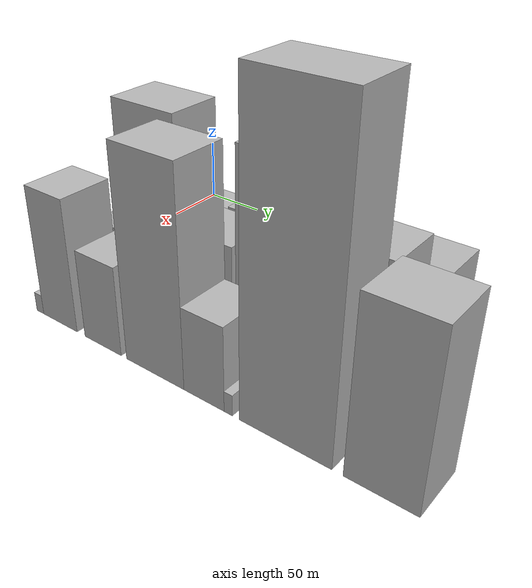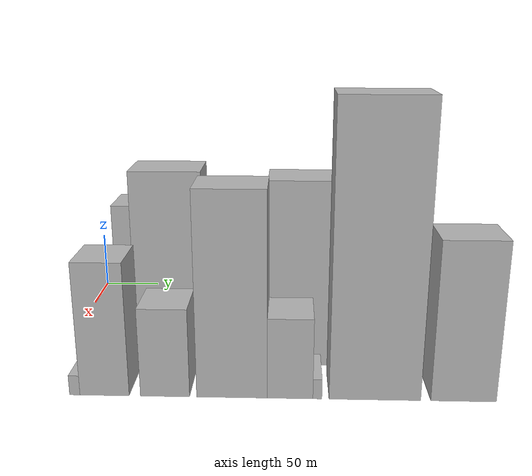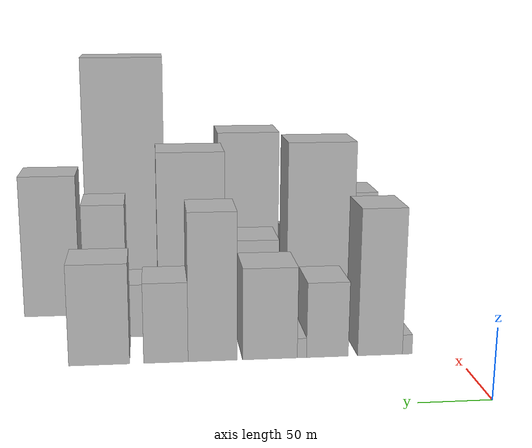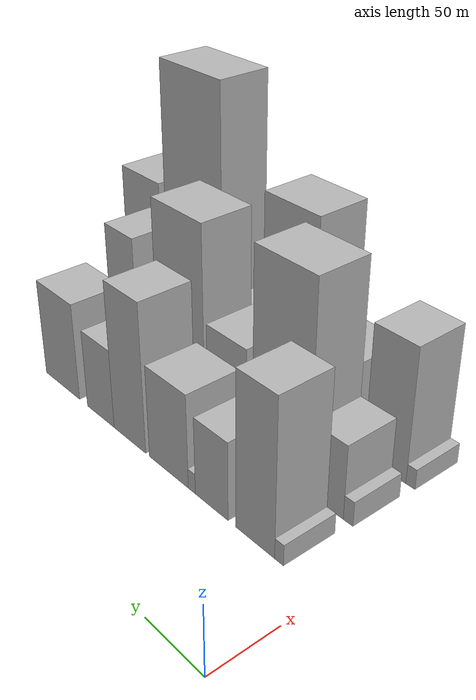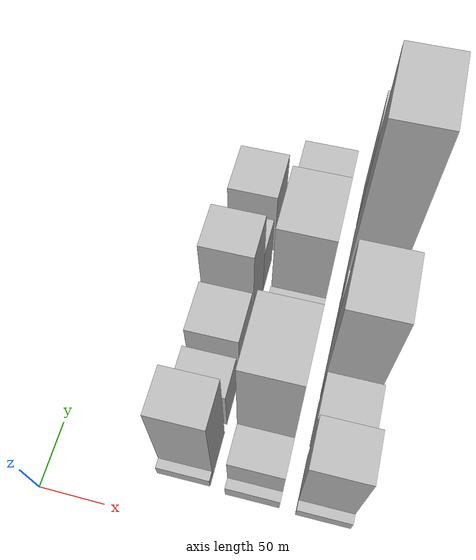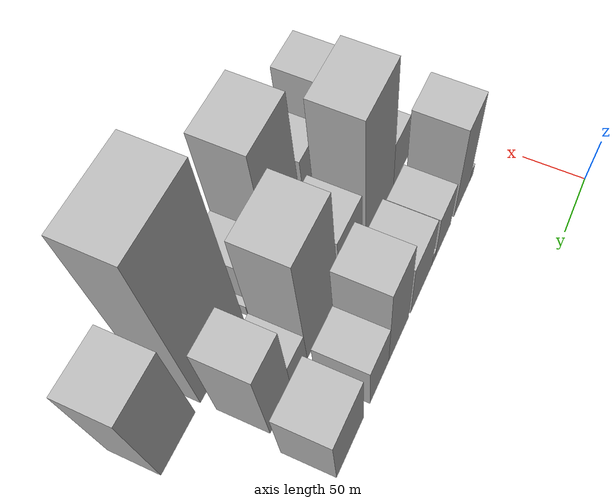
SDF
<sdf version="1.6">
 <world name="default">
  <model name="building_15">
   <static>1</static>
   <pose>100.0000 34.3430 0 0.000000 0.000000 0.000000</pose>
   <link name="link">
    <pose>0 0 7.50 0 0 0</pose>
    <collision name="collision"><geometry><box><size>40.0000 7.2717 15.0000</size></box></geometry></collision>
    <visual name="visual">
     <cast_shadows>0</cast_shadows>
     <geometry><box><size>40.0000 7.2717 15.0000</size></box></geometry>
     <material>
      <script>
       <uri>model://HANNAS_wall/materials/scripts</uri>
       <uri>model://HANNAS_wall/materials/textures</uri>
       <name>vrc/HANNAS_wall</name>
      </script>
     </material>
    </visual>
   </link>
  </model>
  <model name="building_16">
   <static>1</static>
   <pose>100.0000 54.7436 0 0.000000 0.000000 0.000000</pose>
   <link name="link">
    <pose>0 0 55.50 0 0 0</pose>
    <collision name="collision"><geometry><box><size>40.0000 33.5295 111.0000</size></box></geometry></collision>
    <visual name="visual">
     <cast_shadows>0</cast_shadows>
     <geometry><box><size>40.0000 33.5295 111.0000</size></box></geometry>
     <material>
      <script>
       <uri>model://HANNAS_wall/materials/scripts</uri>
       <uri>model://HANNAS_wall/materials/textures</uri>
       <name>vrc/HANNAS_wall</name>
      </script>
     </material>
    </visual>
   </link>
  </model>
  <model name="building_17">
   <static>1</static>
   <pose>100.0000 93.9533 0 0.000000 0.000000 0.000000</pose>
   <link name="link">
    <pose>0 0 28.50 0 0 0</pose>
    <collision name="collision"><geometry><box><size>40.0000 30.8900 57.0000</size></box></geometry></collision>
    <visual name="visual">
     <cast_shadows>0</cast_shadows>
     <geometry><box><size>40.0000 30.8900 57.0000</size></box></geometry>
     <material>
      <script>
       <uri>model://HANNAS_wall/materials/scripts</uri>
       <uri>model://HANNAS_wall/materials/textures</uri>
       <name>vrc/HANNAS_wall</name>
      </script>
     </material>
    </visual>
   </link>
  </model>
  <model name="building_18">
   <static>1</static>
   <pose>100.0000 112.8264 0 0.000000 0.000000 0.000000</pose>
   <link name="link">
    <pose>0 0 7.50 0 0 0</pose>
    <collision name="collision"><geometry><box><size>40.0000 6.8562 15.0000</size></box></geometry></collision>
    <visual name="visual">
     <cast_shadows>0</cast_shadows>
     <geometry><box><size>40.0000 6.8562 15.0000</size></box></geometry>
     <material>
      <script>
       <uri>model://HANNAS_wall/materials/scripts</uri>
       <uri>model://HANNAS_wall/materials/textures</uri>
       <name>vrc/HANNAS_wall</name>
      </script>
     </material>
    </visual>
   </link>
  </model>
  <model name="building_19">
   <static>1</static>
   <pose>100.0000 136.2971 0 0.000000 0.000000 0.000000</pose>
   <link name="link">
    <pose>0 0 34.50 0 0 0</pose>
    <collision name="collision"><geometry><box><size>40.0000 40.0853 69.0000</size></box></geometry></collision>
    <visual name="visual">
     <cast_shadows>0</cast_shadows>
     <geometry><box><size>40.0000 40.0853 69.0000</size></box></geometry>
     <material>
      <script>
       <uri>model://HANNAS_wall/materials/scripts</uri>
       <uri>model://HANNAS_wall/materials/textures</uri>
       <name>vrc/HANNAS_wall</name>
      </script>
     </material>
    </visual>
   </link>
  </model>
  <model name="building_20">
   <static>1</static>
   <pose>100.0000 178.0922 0 0.000000 0.000000 0.000000</pose>
   <link name="link">
    <pose>0 0 55.50 0 0 0</pose>
    <collision name="collision"><geometry><box><size>40.0000 35.5049 111.0000</size></box></geometry></collision>
    <visual name="visual">
     <cast_shadows>0</cast_shadows>
     <geometry><box><size>40.0000 35.5049 111.0000</size></box></geometry>
     <material>
      <script>
       <uri>model://HANNAS_wall/materials/scripts</uri>
       <uri>model://HANNAS_wall/materials/textures</uri>
       <name>vrc/HANNAS_wall</name>
      </script>
     </material>
    </visual>
   </link>
  </model>
  <model name="building_21">
   <static>1</static>
   <pose>100.0000 211.8071 0 0.000000 0.000000 0.000000</pose>
   <link name="link">
    <pose>0 0 30.00 0 0 0</pose>
    <collision name="collision"><geometry><box><size>40.0000 31.9250 60.0000</size></box></geometry></collision>
    <visual name="visual">
     <cast_shadows>0</cast_shadows>
     <geometry><box><size>40.0000 31.9250 60.0000</size></box></geometry>
     <material>
      <script>
       <uri>model://HANNAS_wall/materials/scripts</uri>
       <uri>model://HANNAS_wall/materials/textures</uri>
       <name>vrc/HANNAS_wall</name>
      </script>
     </material>
    </visual>
   </link>
  </model>
  <model name="building_22">
   <static>1</static>
   <pose>100.0000 259.4445 0 0.000000 0.000000 0.000000</pose>
   <link name="link">
    <pose>0 0 37.50 0 0 0</pose>
    <collision name="collision"><geometry><box><size>40.0000 43.3497 75.0000</size></box></geometry></collision>
    <visual name="visual">
     <cast_shadows>0</cast_shadows>
     <geometry><box><size>40.0000 43.3497 75.0000</size></box></geometry>
     <material>
      <script>
       <uri>model://HANNAS_wall/materials/scripts</uri>
       <uri>model://HANNAS_wall/materials/textures</uri>
       <name>vrc/HANNAS_wall</name>
      </script>
     </material>
    </visual>
   </link>
  </model>
  <model name="building_49">
   <static>1</static>
   <pose>152.0000 31.8512 0 0.000000 0.000000 0.000000</pose>
   <link name="link">
    <pose>0 0 9.00 0 0 0</pose>
    <collision name="collision"><geometry><box><size>40.0000 7.8231 18.0000</size></box></geometry></collision>
    <visual name="visual">
     <cast_shadows>0</cast_shadows>
     <geometry><box><size>40.0000 7.8231 18.0000</size></box></geometry>
     <material>
      <script>
       <uri>model://HANNAS_wall/materials/scripts</uri>
       <uri>model://HANNAS_wall/materials/textures</uri>
       <name>vrc/HANNAS_wall</name>
      </script>
     </material>
    </visual>
   </link>
  </model>
  <model name="building_50">
   <static>1</static>
   <pose>152.0000 50.0899 0 0.000000 0.000000 0.000000</pose>
   <link name="link">
    <pose>0 0 27.00 0 0 0</pose>
    <collision name="collision"><geometry><box><size>40.0000 28.6542 54.0000</size></box></geometry></collision>
    <visual name="visual">
     <cast_shadows>0</cast_shadows>
     <geometry><box><size>40.0000 28.6542 54.0000</size></box></geometry>
     <material>
      <script>
       <uri>model://HANNAS_wall/materials/scripts</uri>
       <uri>model://HANNAS_wall/materials/textures</uri>
       <name>vrc/HANNAS_wall</name>
      </script>
     </material>
    </visual>
   </link>
  </model>
  <model name="building_51">
   <static>1</static>
   <pose>152.0000 90.5990 0 0.000000 0.000000 0.000000</pose>
   <link name="link">
    <pose>0 0 75.00 0 0 0</pose>
    <collision name="collision"><geometry><box><size>40.0000 52.3640 150.0000</size></box></geometry></collision>
    <visual name="visual">
     <cast_shadows>0</cast_shadows>
     <geometry><box><size>40.0000 52.3640 150.0000</size></box></geometry>
     <material>
      <script>
       <uri>model://HANNAS_wall/materials/scripts</uri>
       <uri>model://HANNAS_wall/materials/textures</uri>
       <name>vrc/HANNAS_wall</name>
      </script>
     </material>
    </visual>
   </link>
  </model>
  <model name="building_52">
   <static>1</static>
   <pose>152.0000 119.8680 0 0.000000 0.000000 0.000000</pose>
   <link name="link">
    <pose>0 0 7.50 0 0 0</pose>
    <collision name="collision"><geometry><box><size>40.0000 6.1741 15.0000</size></box></geometry></collision>
    <visual name="visual">
     <cast_shadows>0</cast_shadows>
     <geometry><box><size>40.0000 6.1741 15.0000</size></box></geometry>
     <material>
      <script>
       <uri>model://HANNAS_wall/materials/scripts</uri>
       <uri>model://HANNAS_wall/materials/textures</uri>
       <name>vrc/HANNAS_wall</name>
      </script>
     </material>
    </visual>
   </link>
  </model>
  <model name="building_53">
   <static>1</static>
   <pose>152.0000 142.4640 0 0.000000 0.000000 0.000000</pose>
   <link name="link">
    <pose>0 0 37.50 0 0 0</pose>
    <collision name="collision"><geometry><box><size>40.0000 39.0178 75.0000</size></box></geometry></collision>
    <visual name="visual">
     <cast_shadows>0</cast_shadows>
     <geometry><box><size>40.0000 39.0178 75.0000</size></box></geometry>
     <material>
      <script>
       <uri>model://HANNAS_wall/materials/scripts</uri>
       <uri>model://HANNAS_wall/materials/textures</uri>
       <name>vrc/HANNAS_wall</name>
      </script>
     </material>
    </visual>
   </link>
  </model>
  <model name="building_54">
   <static>1</static>
   <pose>152.0000 190.5703 0 0.000000 0.000000 0.000000</pose>
   <link name="link">
    <pose>0 0 72.00 0 0 0</pose>
    <collision name="collision"><geometry><box><size>40.0000 51.1949 144.0000</size></box></geometry></collision>
    <visual name="visual">
     <cast_shadows>0</cast_shadows>
     <geometry><box><size>40.0000 51.1949 144.0000</size></box></geometry>
     <material>
      <script>
       <uri>model://HANNAS_wall/materials/scripts</uri>
       <uri>model://HANNAS_wall/materials/textures</uri>
       <name>vrc/HANNAS_wall</name>
      </script>
     </material>
    </visual>
   </link>
  </model>
  <model name="building_55">
   <static>1</static>
   <pose>152.0000 228.2397 0 0.000000 0.000000 0.000000</pose>
   <link name="link">
    <pose>0 0 21.00 0 0 0</pose>
    <collision name="collision"><geometry><box><size>40.0000 24.1439 42.0000</size></box></geometry></collision>
    <visual name="visual">
     <cast_shadows>0</cast_shadows>
     <geometry><box><size>40.0000 24.1439 42.0000</size></box></geometry>
     <material>
      <script>
       <uri>model://HANNAS_wall/materials/scripts</uri>
       <uri>model://HANNAS_wall/materials/textures</uri>
       <name>vrc/HANNAS_wall</name>
      </script>
     </material>
    </visual>
   </link>
  </model>
  <model name="building_56">
   <static>1</static>
   <pose>152.0000 256.5403 0 0.000000 0.000000 0.000000</pose>
   <link name="link">
    <pose>0 0 52.50 0 0 0</pose>
    <collision name="collision"><geometry><box><size>40.0000 32.4572 105.0000</size></box></geometry></collision>
    <visual name="visual">
     <cast_shadows>0</cast_shadows>
     <geometry><box><size>40.0000 32.4572 105.0000</size></box></geometry>
     <material>
      <script>
       <uri>model://HANNAS_wall/materials/scripts</uri>
       <uri>model://HANNAS_wall/materials/textures</uri>
       <name>vrc/HANNAS_wall</name>
      </script>
     </material>
    </visual>
   </link>
  </model>
  <model name="building_81">
   <static>1</static>
   <pose>204.0000 29.9520 0 0.000000 0.000000 0.000000</pose>
   <link name="link">
    <pose>0 0 7.50 0 0 0</pose>
    <collision name="collision"><geometry><box><size>40.0000 7.3735 15.0000</size></box></geometry></collision>
    <visual name="visual">
     <cast_shadows>0</cast_shadows>
     <geometry><box><size>40.0000 7.3735 15.0000</size></box></geometry>
     <material>
      <script>
       <uri>model://HANNAS_wall/materials/scripts</uri>
       <uri>model://HANNAS_wall/materials/textures</uri>
       <name>vrc/HANNAS_wall</name>
      </script>
     </material>
    </visual>
   </link>
  </model>
  <model name="building_82">
   <static>1</static>
   <pose>204.0000 51.1519 0 0.000000 0.000000 0.000000</pose>
   <link name="link">
    <pose>0 0 49.50 0 0 0</pose>
    <collision name="collision"><geometry><box><size>40.0000 35.0263 99.0000</size></box></geometry></collision>
    <visual name="visual">
     <cast_shadows>0</cast_shadows>
     <geometry><box><size>40.0000 35.0263 99.0000</size></box></geometry>
     <material>
      <script>
       <uri>model://HANNAS_wall/materials/scripts</uri>
       <uri>model://HANNAS_wall/materials/textures</uri>
       <name>vrc/HANNAS_wall</name>
      </script>
     </material>
    </visual>
   </link>
  </model>
  <model name="building_83">
   <static>1</static>
   <pose>204.0000 94.0574 0 0.000000 0.000000 0.000000</pose>
   <link name="link">
    <pose>0 0 33.00 0 0 0</pose>
    <collision name="collision"><geometry><box><size>40.0000 34.7847 66.0000</size></box></geometry></collision>
    <visual name="visual">
     <cast_shadows>0</cast_shadows>
     <geometry><box><size>40.0000 34.7847 66.0000</size></box></geometry>
     <material>
      <script>
       <uri>model://HANNAS_wall/materials/scripts</uri>
       <uri>model://HANNAS_wall/materials/textures</uri>
       <name>vrc/HANNAS_wall</name>
      </script>
     </material>
    </visual>
   </link>
  </model>
  <model name="building_84">
   <static>1</static>
   <pose>204.0000 141.3452 0 0.000000 0.000000 0.000000</pose>
   <link name="link">
    <pose>0 0 75.00 0 0 0</pose>
    <collision name="collision"><geometry><box><size>40.0000 49.7909 150.0000</size></box></geometry></collision>
    <visual name="visual">
     <cast_shadows>0</cast_shadows>
     <geometry><box><size>40.0000 49.7909 150.0000</size></box></geometry>
     <material>
      <script>
       <uri>model://HANNAS_wall/materials/scripts</uri>
       <uri>model://HANNAS_wall/materials/textures</uri>
       <name>vrc/HANNAS_wall</name>
      </script>
     </material>
    </visual>
   </link>
  </model>
  <model name="building_85">
   <static>1</static>
   <pose>204.0000 182.1629 0 0.000000 0.000000 0.000000</pose>
   <link name="link">
    <pose>0 0 30.00 0 0 0</pose>
    <collision name="collision"><geometry><box><size>40.0000 31.8446 60.0000</size></box></geometry></collision>
    <visual name="visual">
     <cast_shadows>0</cast_shadows>
     <geometry><box><size>40.0000 31.8446 60.0000</size></box></geometry>
     <material>
      <script>
       <uri>model://HANNAS_wall/materials/scripts</uri>
       <uri>model://HANNAS_wall/materials/textures</uri>
       <name>vrc/HANNAS_wall</name>
      </script>
     </material>
    </visual>
   </link>
  </model>
  <model name="building_86">
   <static>1</static>
   <pose>204.0000 201.2403 0 0.000000 0.000000 0.000000</pose>
   <link name="link">
    <pose>0 0 7.50 0 0 0</pose>
    <collision name="collision"><geometry><box><size>40.0000 6.3101 15.0000</size></box></geometry></collision>
    <visual name="visual">
     <cast_shadows>0</cast_shadows>
     <geometry><box><size>40.0000 6.3101 15.0000</size></box></geometry>
     <material>
      <script>
       <uri>model://HANNAS_wall/materials/scripts</uri>
       <uri>model://HANNAS_wall/materials/textures</uri>
       <name>vrc/HANNAS_wall</name>
      </script>
     </material>
    </visual>
   </link>
  </model>
  <model name="building_87">
   <static>1</static>
   <pose>204.0000 241.2767 0 0.000000 0.000000 0.000000</pose>
   <link name="link">
    <pose>0 0 105.00 0 0 0</pose>
    <collision name="collision"><geometry><box><size>40.0000 63.7628 210.0000</size></box></geometry></collision>
    <visual name="visual">
     <cast_shadows>0</cast_shadows>
     <geometry><box><size>40.0000 63.7628 210.0000</size></box></geometry>
     <material>
      <script>
       <uri>model://HANNAS_wall/materials/scripts</uri>
       <uri>model://HANNAS_wall/materials/textures</uri>
       <name>vrc/HANNAS_wall</name>
      </script>
     </material>
    </visual>
   </link>
  </model>
  <model name="building_88">
   <static>1</static>
   <pose>204.0000 302.7920 0 0.000000 0.000000 0.000000</pose>
   <link name="link">
    <pose>0 0 58.50 0 0 0</pose>
    <collision name="collision"><geometry><box><size>40.0000 45.2677 117.0000</size></box></geometry></collision>
    <visual name="visual">
     <cast_shadows>0</cast_shadows>
     <geometry><box><size>40.0000 45.2677 117.0000</size></box></geometry>
     <material>
      <script>
       <uri>model://HANNAS_wall/materials/scripts</uri>
       <uri>model://HANNAS_wall/materials/textures</uri>
       <name>vrc/HANNAS_wall</name>
      </script>
     </material>
    </visual>
   </link>
  </model>
 </world>
</sdf>
